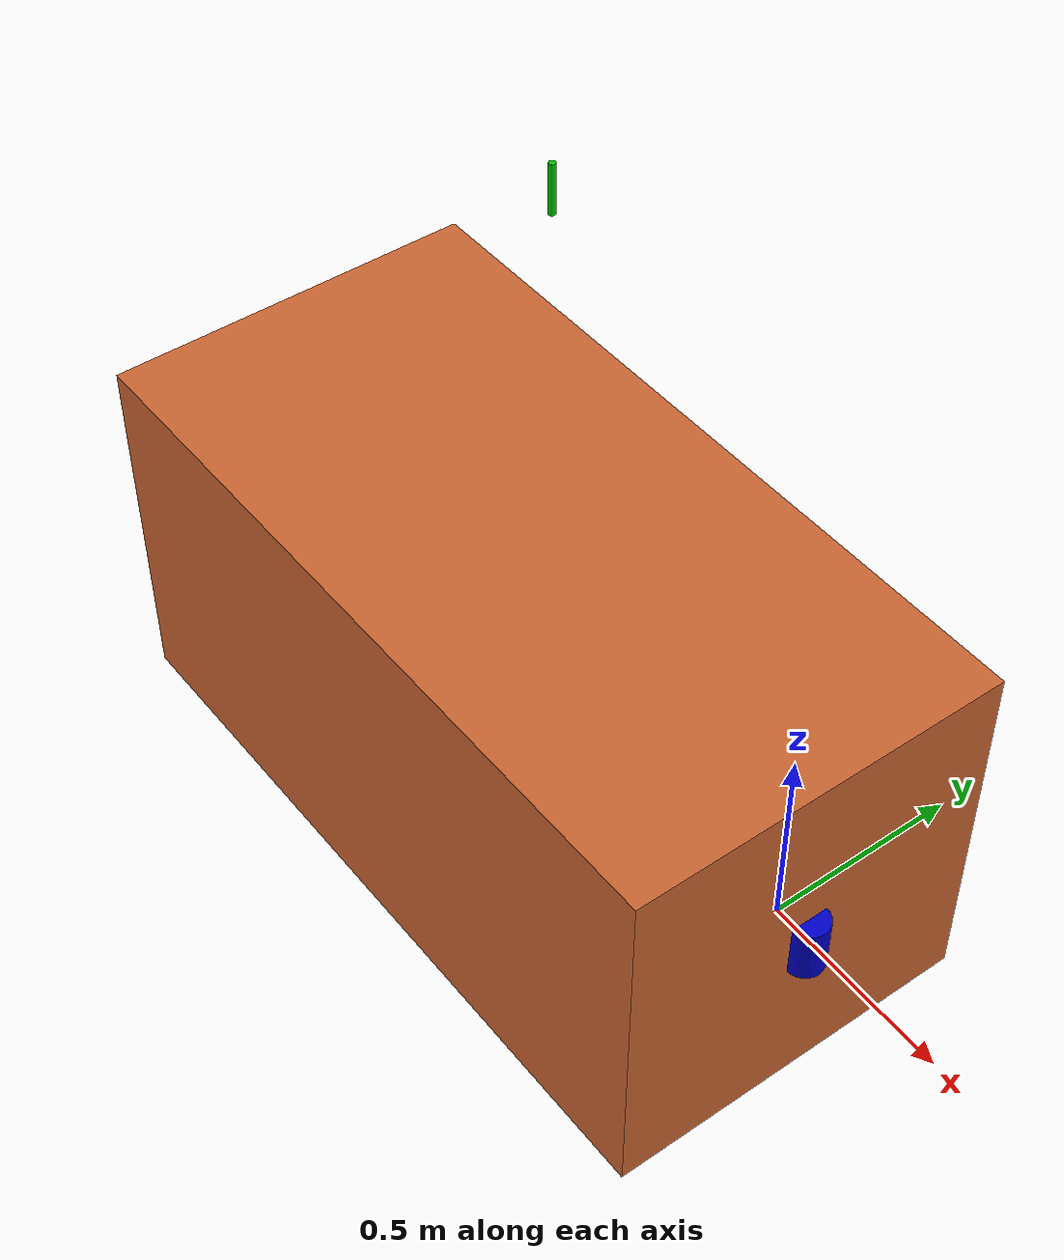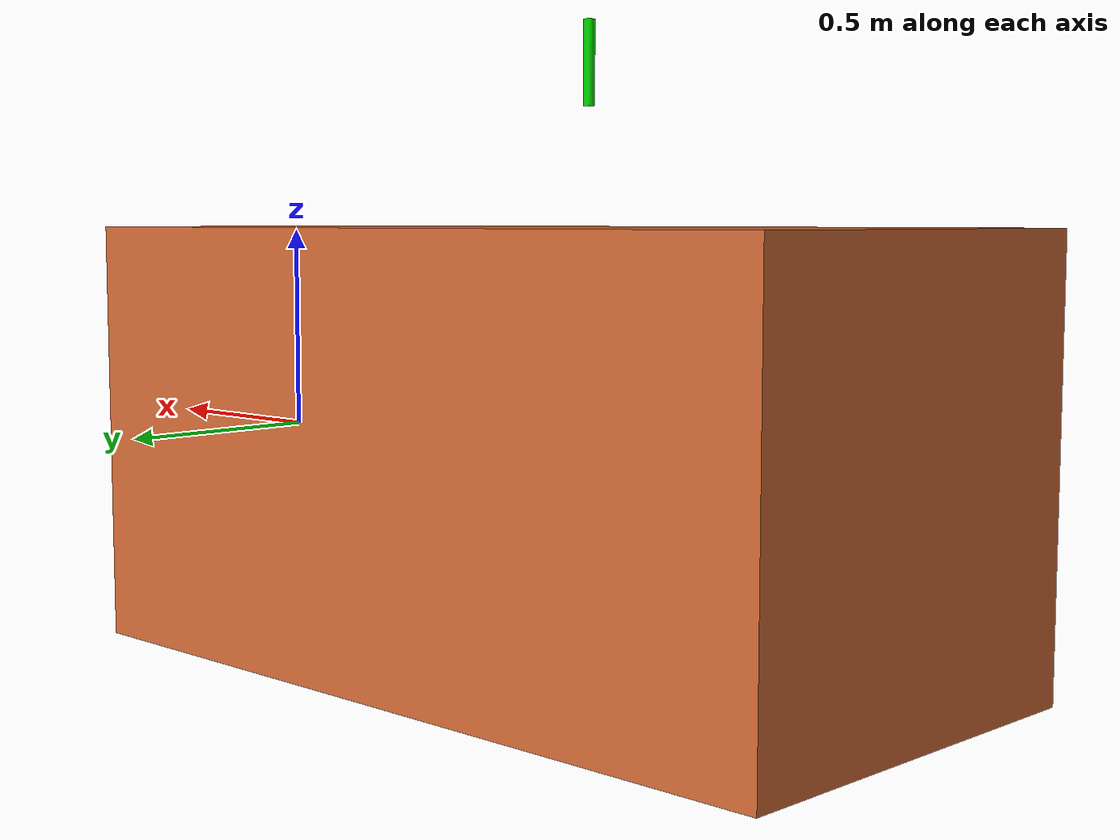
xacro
<?xml version="1.0"?>
<robot xmlns:xacro="http://www.ros.org/wiki/xacro" name="bud">
    <xacro:include filename="$(find car_description)/urdf/materials.urdf.xacro" />
    <xacro:include filename="$(find car_description)/urdf/base/chassis.urdf.xacro" />
    <xacro:include filename="$(find car_description)/urdf/sensors/lidar.urdf.xacro" />
    <xacro:include filename="$(find car_description)/urdf/sensors/imu.urdf.xacro" />
    <xacro:include filename="$(find car_description)/urdf/sensors/gps.urdf.xacro" />
     <!--Vehicle mesures-->
    <xacro:property name="length" value="2.00"/>
    <xacro:property name="width" value="1.00"/>
    <xacro:property name="height" value="1"/>
    <xacro:property name="height_from_ground" value="0.01"/>
    <!--Lidar mesures mesures-->
    <xacro:property name="lidar_height" value="0.15"/>
    <xacro:property name="lidar_radius" value="0.05"/>

    <xacro:property name="lidar_height_from_ground" value="0.0"/>   <!-- retrieve true data from CAD-->
    <xacro:property name="imu_height_from_ground" value="0.0"/> <!-- retrieve true data from CAD-->
    <xacro:property name="gps_height_from_ground" value="0.80"/> <!-- retrieve true data from CAD-->

    <!-- imu -->
    <xacro:car_imu name="imu" >
        <origin xyz="-1.25 0.0 ${imu_height_from_ground}"
                rpy="0.0 0.0 0.0"/>
    </xacro:car_imu>
    <!-- base -->
    <xacro:car_chassie name="chassis" parent="vehicle">
        <origin xyz="0 0 ${lidar_height_from_ground}"/>
    </xacro:car_chassie>
    <!-- lidar -->
    <xacro:car_lidar name="lidar" parent="chassis_link">
        <origin xyz="0 0 ${lidar_height_from_ground}"
        	rpy="0 0 0" />
    </xacro:car_lidar>
    <!-- gps -->
    <xacro:car_gps name="gps" parent="chassis_link">
        <origin xyz="-1.65 0.55 ${gps_height_from_ground}" />
    </xacro:car_gps>
    <!-- imu -->
</robot>
<!-- TODO: Add rear and front axes and change their reference in the code-->

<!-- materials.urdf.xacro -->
<robot>

    <material name="White">
        <color rgba="1.0 1.0 1.0 1.0"/>
    </material>

    <material name="Black">
        <color rgba="0.1 0.1 0.1 1.0"/>
    </material>

    <material name="Orange">
        <color rgba="0.8 0.4 0.2 1.0"/>
    </material>

    <material name="Blue">
        <color rgba="0.0 0.0 0.8 1.0"/>
    </material>

    <material name="Red">
        <color rgba="0.8 0.0 0.0 1.0"/>
    </material>

    <material name="Green">
        <color rgba="0.0 0.8 0.0 1.0"/>
    </material>

</robot>

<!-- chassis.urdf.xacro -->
<robot xmlns:xacro="http://www.ros.org/wiki/xacro">

    <xacro:macro name="car_chassie" params="name *origin parent">
        <link name="${name}_link">
            <visual name="">
                <origin xyz="-${length/2} 0.0 ${height_from_ground}" rpy="0.0 0.0 0.0"/>

                <geometry>
                    <box size="${length} ${width} ${height}"/>
                </geometry>

                <material name="Orange" />
            </visual>
        </link>

        <joint name="${name}_vehicle_joint" type="fixed">
            <origin xyz="0.0 0.0 0.0" rpy="0.0 0.0 0.0"/>
            <child link="${name}_link"/>
            <parent link="vehicle"/>
        </joint>
    </xacro:macro>

</robot>

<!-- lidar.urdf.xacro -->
<robot xmlns:xacro="http://www.ros.org/wiki/xacro">
    <xacro:macro name="car_lidar" params="name *origin parent">
        <joint name="${name}_link_joint" type="fixed">
            <xacro:insert_block name="origin"/>
            <parent link="${parent}"/>
            <child link="${name}"/> <!-- TODO: -->
        </joint>

        <link name="${name}"> <!-- TODO: -->
            <visual name="">
                <origin xyz="0.0 0.0 0.0" rpy="0.0 0.0 0.0"/>
                <geometry>
                    <cylinder length="${lidar_height}" radius="${lidar_radius}"/>
                </geometry>
                <material name="Blue" />
            </visual>
        </link>
    </xacro:macro>
</robot>

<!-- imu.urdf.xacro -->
<robot xmlns:xacro="http://www.ros.org/wiki/xacro">
    <xacro:macro name="car_imu" params="name *origin">

        <link name="${name}_link">
            <visual name="">
                <origin xyz="0.1 0.0 0.0" rpy="0.0 0.0 0.0"/>
                <geometry>
                    <box size="0.05 0.05 0.02"/>
                </geometry>
                <material name="Red"/>
            </visual>
        </link>

        <link name="vehicle">
            <visual name="">
                <origin xyz="0 0.0 0.0" rpy="0.0 0.0 0.0"/>
                <geometry>
                    <box size="0.05 0.05 0.02"/>
                </geometry>
            </visual>
        </link>

        <joint name="${name}_base_joint" type="fixed">
            <origin xyz="0.1 0.0 0.0" rpy="0.0 0.0 0.0"/>
            <xacro:insert_block name="origin"/>
            <parent link="${name}_link"/>
            <child link="vehicle"/>
        </joint>
    </xacro:macro>
</robot>

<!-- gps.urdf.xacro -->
<robot xmlns:xacro="http://www.ros.org/wiki/xacro">
    <xacro:macro name="car_gps" params="name *origin parent">
        <joint name="${name}_link_joint" type="fixed">
            <xacro:insert_block name="origin"/>
            <parent link="${parent}"/>
            <child link="${name}"/>
        </joint>

        <link name="${name}">
            <visual name="">
                <origin xyz="0.0 0.0 0.0" rpy="0.0 0.0 0.0"/>
                <geometry>
                    <cylinder length="0.15" radius="0.01"/>
                </geometry>
                <material name="Green" />
            </visual>
        </link>
    </xacro:macro>
</robot>
